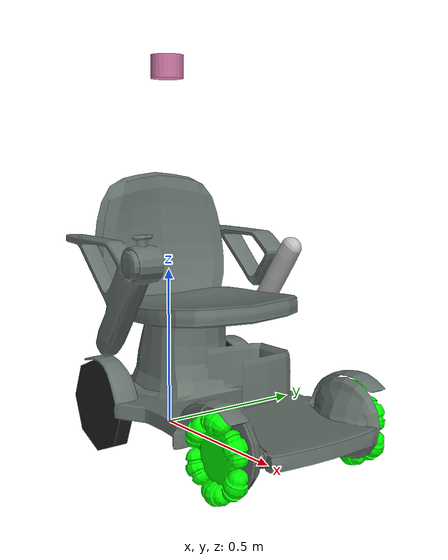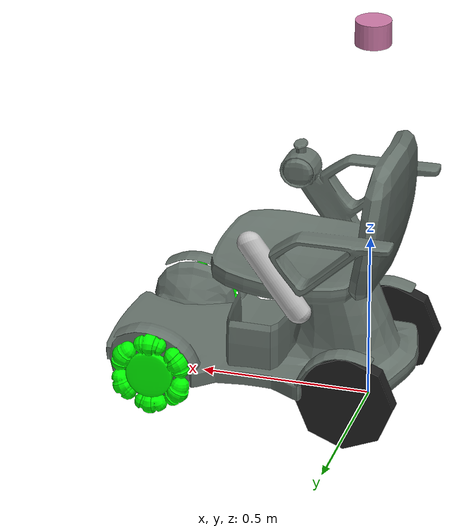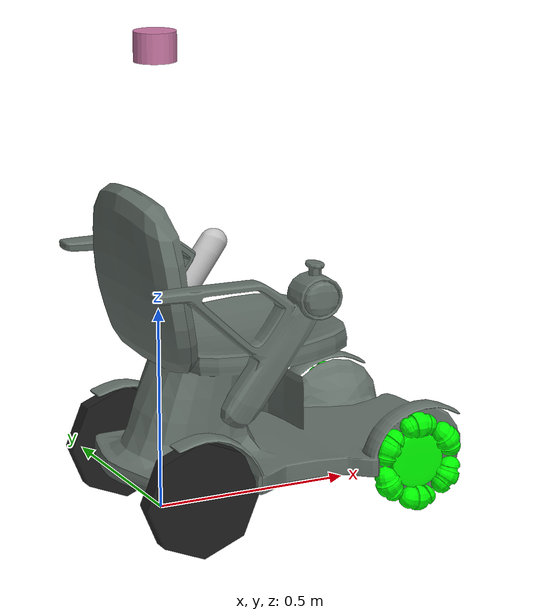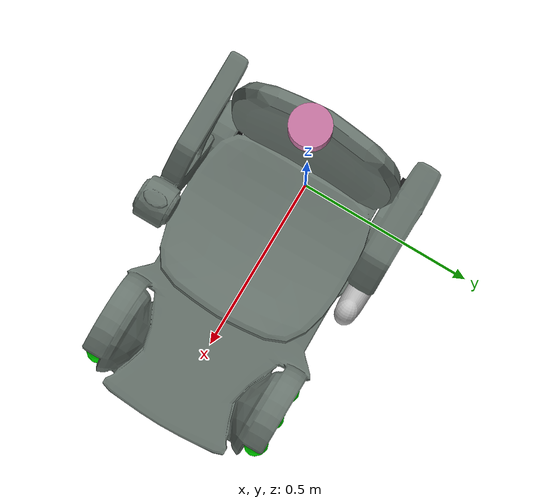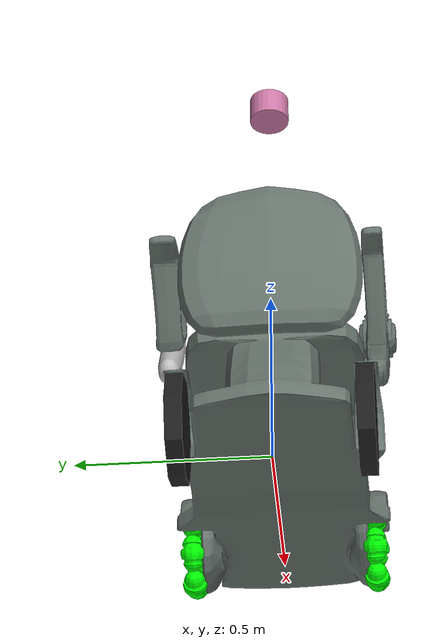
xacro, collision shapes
<?xml version="1.0"?>
<robot xmlns:xacro="http://www.ros.org/wiki/xacro" name="wheelchair">
  <xacro:arg name="gpu" default="false"/>
  <xacro:property name="gpu" value="$(arg gpu)" />
  <!-- Base footprint joint -->
   <link name="base_footprint"/>
    <joint name="base_link_joint" type="fixed">
     <parent link="base_footprint"/>
     <child link="base_link"/>
     <origin xyz="0 0 0.100"/>
   </joint>
  <!-- Base Link -->
  <link name="base_link">
   <!-- Base Link visual -->
    <visual>
      <origin rpy="0 0 3.1415" xyz="0.22 0 0.01"/>
      <geometry>
        <mesh filename="package://electric_wheelchair/mesh/base.dae"/>
      </geometry>
    </visual>
    <!-- Base Link collision -->
    <collision>
      <origin rpy="0 0 3.1415" xyz="0.22 0 0.01"/>
      <geometry>
        <mesh filename="package://electric_wheelchair/mesh/base.dae"/>
      </geometry>
    </collision>
  <!-- Base Link inertial -->
   <inertial>
    <origin xyz="0 0 0"/>
    <mass value="48.000"/>
    <inertia
      ixx="0.051" ixy="0" ixz="0"
      iyy="0.107" iyz="0"
      izz="0.106"/>
    </inertial>
  </link>

  <!-- Left wheel -->
  <!-- Left wheel link -->
  <link name="left_wheel_link">
    <!-- Left wheel link visual -->
    <visual>
      <geometry>
        <mesh filename="package://electric_wheelchair/mesh/rearwheel.dae"/>
      </geometry>
      <origin xyz="-0.22 0 -0.25" rpy="1.5709 0 0"/>
      <material name="black"/>
    </visual>
    <!-- Left wheel link collision -->
    <collision>
      <geometry>
        <mesh filename="package://electric_wheelchair/mesh/rearwheel.dae"/>
      </geometry>
      <origin xyz="-0.22 0 -0.25" rpy="1.5709 0 0"/>
    </collision>

    <!-- Left wheel link inertial -->
   <inertial>
    <origin xyz="0 0 0"/>
    <mass value="1.000"/>
    <inertia
        ixx="0.004433" ixy="0" ixz="0"
        iyy="0.004433" iyz="0"
        izz="0.00845"/>
   </inertial>

  </link>
  <!-- Left wheel joint -->
  <joint name="left_wheel_joint" type="continuous">
    <parent link="base_link"/>
    <child link="left_wheel_link"/>
    <origin rpy="-1.570796 0 0" xyz="0 0.246 0"/>
    <axis xyz="0 0 1"/>
  </joint>

  <!-- Right wheel -->
  <!-- Right wheel link -->
  <link name="right_wheel_link">
    <!-- Right wheel link visual -->
    <visual>
      <geometry>
        <mesh filename="package://electric_wheelchair/mesh/rearwheel.dae"/>
      </geometry>
      <origin xyz="-0.23 0 -0.25" rpy="1.5709 0 0"/>
      <material name="black"/>
    </visual>
  <!-- Right wheel link collision -->
    <collision>
      <geometry>
        <mesh filename="package://electric_wheelchair/mesh/rearwheel.dae"/>
      </geometry>
      <origin xyz="-0.23 0 -0.25" rpy="1.5709 0 0"/>
    </collision>
    <!-- Right wheel link inertial -->
   <inertial>
    <origin xyz="0 0 0"/>
    <mass value="1.000"/>
    <inertia
        ixx="0.004433" ixy="0" ixz="0"
        iyy="0.004433" iyz="0"
        izz="0.00845"/>
   </inertial>

  </link>
<!-- Right wheel joint -->
  <joint name="right_wheel_joint" type="continuous">
    <parent link="base_link"/>
    <child link="right_wheel_link"/>
    <origin rpy="1.5707 0 0" xyz="0 -0.246 0"/>
    <axis xyz="0 0 -1"/>
  </joint>

  <!-- Left caster -->
  <!-- Left caster link -->
  <link name="left_caster_link">
    <!-- Left caster link visual -->
    <visual>
      <geometry>
        <mesh filename="package://electric_wheelchair/mesh/frontwheel.dae"/>
      </geometry>
      <origin xyz="0.36 0 0.24" rpy="1.5707 0 0"/>
      <material name="green">
        <color rgba="0 1 0 1"/>
      </material>
    </visual>
    <!-- Left caster link collision -->
    <collision>
      <geometry>
        <mesh filename="package://electric_wheelchair/mesh/frontwheel.dae"/>
      </geometry>
      <origin xyz="0.36 0 0.24" rpy="1.5707 0 0"/>
    </collision>
<!-- Left caster link inertial -->
   <inertial>
    <origin xyz="0 0 0"/>
    <mass value="1.000"/>
    <inertia
        ixx="0.004433"  ixy="0" ixz="0"
        iyy="0.004433"  iyz="0"
        izz="0.0007812"/>
   </inertial>

  </link>
 <!-- Left caster joint -->
  <joint name="left_caster_joint" type="continuous">
   <parent link="base_link"/>
   <child link="left_caster_link"/>
   <origin rpy="1.5707 0 0" xyz="0.592 0.246 0"/>
   <axis xyz="0 0 1"/>
  </joint>

  <!-- Right caster -->
  <!-- Right caster link -->
 <link name="right_caster_link">
  <!-- Right caster link visual -->
   <visual>
     <geometry>
       <mesh filename="package://electric_wheelchair/mesh/frontwheel.dae"/>
     </geometry>
     <origin xyz="0.36 0 0.23" rpy="1.5707 0 0"/>
     <material name="green">
       <color rgba="0 1 0 1"/>
     </material>
   </visual>
  <!-- Right caster link collision -->
   <collision>
     <geometry>
      <mesh filename="package://electric_wheelchair/mesh/frontwheel.dae"/>
     </geometry>
     <origin xyz="0.36 0 0.23" rpy="1.5707 0 0"/>
   </collision>
  <!-- Right caster link inertial -->
  <inertial>
   <origin xyz="0 0 0"/>
   <mass value="1.000"/>
    <inertia
        ixx="0.004433"  ixy="0" ixz="0"
        iyy="0.004433"  iyz="0"
        izz="0.0007812"/>
  </inertial>

 </link>
<!-- Right caster joint -->
 <joint name="right_caster_joint" type="continuous">
  <parent link="base_link"/>
  <child link="right_caster_link"/>
  <origin rpy="1.5707 0 0" xyz="0.592 -0.246 0"/>
  <axis xyz="0 0 1"/>
  </joint>

<!-- ===============  Transmission =============== -->
  <transmission name="left_wheel_trans">
    <type>transmission_interface/SimpleTransmission</type>
    <joint name="left_wheel_joint">
      <hardwareInterface>hardware_interface/VelocityJointInterface</hardwareInterface>
    </joint>
    <actuator name="left_wheel_motor">
      <hardwareInterface>hardware_interface/VelocityJointInterface</hardwareInterface>
      <mechanicalReduction>30</mechanicalReduction>
    </actuator>
  </transmission>

 <transmission name="right_wheel_trans">
  <type>transmission_interface/SimpleTransmission</type>
  <joint name="right_wheel_joint">
    <hardwareInterface>hardware_interface/VelocityJointInterface</hardwareInterface>
  </joint>
  <actuator name="right_wheel_motor">
    <hardwareInterface>hardware_interface/VelocityJointInterface</hardwareInterface>
    <mechanicalReduction>30</mechanicalReduction>
  </actuator>
 </transmission>

<!-- =============== Gazebo =============== -->
  <gazebo>
   <plugin name="gazebo_ros_control" filename="libgazebo_ros_control.so">
    <robotNamespace>wheelchair</robotNamespace>
   </plugin>
  </gazebo>

 <gazebo reference="base_link">
  <selfCollide>true</selfCollide>
  <mu1 value="0.05" />
  <mu2 value="0.05" />
 </gazebo>

 <gazebo reference="left_wheel_link">
  <selfCollide>true</selfCollide>
  <mu1 value="0.8" />
  <mu2 value="0.8" />
 </gazebo>

 <gazebo reference="right_wheel_link">
  <selfCollide>true</selfCollide>
  <mu1 value="0.8" />
  <mu2 value="0.8" />
 </gazebo>

 <gazebo reference="left_caster_link">
  <selfCollide>true</selfCollide>
  <!-- This caster is no frictional resistance. -->
  <mu1 value="0.8" />
  <mu2 value="0.8" />
 </gazebo>

 <gazebo reference="right_caster_link">
  <selfCollide>true</selfCollide>
  <!-- This caster is no frictional resistance. -->
  <mu1 value="0.8" />
  <mu2 value="0.8" />
 </gazebo>

  <xacro:include filename="$(find velodyne_description)/urdf/VLP-16.urdf.xacro"/>
  <VLP-16
      parent="base_link"
      name="velodyne"
      topic="/velodyne_points"
      hz="10"
      samples="440"
      gpu="${gpu}">
      <origin xyz="0 0 1" rpy="0 0 0" />
  </VLP-16>

</robot>

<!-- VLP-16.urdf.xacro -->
<robot xmlns:xacro="http://www.ros.org/wiki/xacro" name="VLP-16">
  <xacro:property name="M_PI" value="3.1415926535897931" />
  <xacro:macro name="VLP-16" params="*origin is_sim:=true parent:=base_link name:=velodyne tf_prefix:='' topic:=/velodyne_points organize_cloud:=false hz:=10 lasers:=16 samples:=1875 collision_range:=0.3 min_range:=0.0 max_range:=100.0 noise:=0.008 min_angle:=-${M_PI} max_angle:=${M_PI} gpu:=false">

    <joint name="${name}_base_mount_joint" type="fixed">
      <xacro:insert_block name="origin" />
      <parent link="${parent}"/>
      <child link="${name}_base_link"/>
    </joint>

    <link name="${name}_base_link">
      <inertial>
        <mass value="0.83"/>
        <origin xyz="0 0 0.03585"/>
        <inertia ixx="${(0.83 * (3.0*0.0516*0.0516 + 0.0717*0.0717)) / 12.0}" ixy="0" ixz="0"
          iyy="${(0.83 * (3.0*0.0516*0.0516 + 0.0717*0.0717)) / 12.0}" iyz="0"
          izz="${0.5 * 0.83 * (0.0516*0.0516)}"/>
      </inertial>
      <visual>
        <geometry>
          <mesh filename="package://velodyne_description/meshes/VLP16_base_1.dae" />
        </geometry>
      </visual>
      <visual>
        <geometry>
          <mesh filename="package://velodyne_description/meshes/VLP16_base_2.dae" />
        </geometry>
      </visual>
      <collision>
        <origin rpy="0 0 0" xyz="0 0 0.03585"/>
        <geometry>
          <cylinder radius="0.0516" length="0.0717"/>
        </geometry>
      </collision>
    </link>

    <joint name="${name}_base_scan_joint" type="fixed" >
      <origin xyz="0 0 0.0377" rpy="0 0 0" />
      <parent link="${name}_base_link" />
      <child link="${name}"/>
    </joint>

    <link name="${name}">
      <inertial>
        <mass value="0.01"/>
        <origin xyz="0 0 0"/>
        <inertia ixx="1e-7" ixy="0" ixz="0" iyy="1e-7" iyz="0" izz="1e-7"/>
      </inertial>
      <visual>
        <origin xyz="0 0 -0.0377" />
        <geometry>
          <mesh filename="package://velodyne_description/meshes/VLP16_scan.dae" />
        </geometry>
      </visual>
      <collision>
        <geometry>
          <sphere radius="0"/>
        </geometry>
      </collision>
    </link>

    <!-- Gazebo requires the velodyne_gazebo_plugins package -->
    <xacro:if value="${is_sim}">
        <gazebo reference="${name}">
            <xacro:if value="${gpu}">
                <sensor type="gpu_ray" name="${name}-VLP16">
                <pose>0 0 0 0 0 0</pose>
                <visualize>false</visualize>
                <update_rate>${hz}</update_rate>
                <ray>
                    <scan>
                    <horizontal>
                        <samples>${samples}</samples>
                        <resolution>1</resolution>
                        <min_angle>${min_angle}</min_angle>
                        <max_angle>${max_angle}</max_angle>
                    </horizontal>
                    <vertical>
                        <samples>${lasers}</samples>
                        <resolution>1</resolution>
                        <min_angle>-${15.0*M_PI/180.0}</min_angle>
                        <max_angle> ${15.0*M_PI/180.0}</max_angle>
                    </vertical>
                    </scan>
                    <range>
                    <min>${collision_range}</min>
                    <max>${max_range+1}</max>
                    <resolution>0.001</resolution>
                    </range>
                    <noise>
                    <type>gaussian</type>
                    <mean>0.0</mean>
                    <stddev>0.0</stddev>
                    </noise>
                </ray>
                <plugin name="gazebo_ros_laser_controller" filename="libgazebo_ros_velodyne_laser.so">
                    <ros>
                    <namespace>/${name}</namespace>
                    <remapping>~/out:=${topic}</remapping>
                    </ros>
                    <tf_prefix>${tf_prefix}</tf_prefix>
                    <frame_name>${name}</frame_name>
                    <organize_cloud>${organize_cloud}</organize_cloud>
                    <min_range>${min_range}</min_range>
                    <max_range>${max_range}</max_range>
                    <gaussian_noise>${noise}</gaussian_noise>
                </plugin>
                </sensor>
            </xacro:if>
            <xacro:unless value="${gpu}">
                <sensor type="ray" name="${name}-VLP16">
                <pose>0 0 0 0 0 0</pose>
                <visualize>false</visualize>
                <update_rate>${hz}</update_rate>
                <ray>
                    <scan>
                    <horizontal>
                        <samples>${samples}</samples>
                        <resolution>1</resolution>
                        <min_angle>${min_angle}</min_angle>
                        <max_angle>${max_angle}</max_angle>
                    </horizontal>
                    <vertical>
                        <samples>${lasers}</samples>
                        <resolution>1</resolution>
                        <min_angle>-${15.0*M_PI/180.0}</min_angle>
                        <max_angle> ${15.0*M_PI/180.0}</max_angle>
                    </vertical>
                    </scan>
                    <range>
                    <min>${collision_range}</min>
                    <max>${max_range+1}</max>
                    <resolution>0.001</resolution>
                    </range>
                    <noise>
                    <type>gaussian</type>
                    <mean>0.0</mean>
                    <stddev>0.0</stddev>
                    </noise>
                </ray>
                <plugin name="gazebo_ros_laser_controller" filename="libgazebo_ros_velodyne_laser.so">
                    <ros>
                    <namespace>/${name}</namespace>
                    <remapping>~/out:=${topic}</remapping>
                    </ros>
                    <tf_prefix>${tf_prefix}</tf_prefix>
                    <frame_name>${name}</frame_name>
                    <organize_cloud>${organize_cloud}</organize_cloud>
                    <min_range>${min_range}</min_range>
                    <max_range>${max_range}</max_range>
                    <gaussian_noise>${noise}</gaussian_noise>
                </plugin>
                </sensor>
            </xacro:unless>
        </gazebo>
    </xacro:if>

  </xacro:macro>
</robot>
